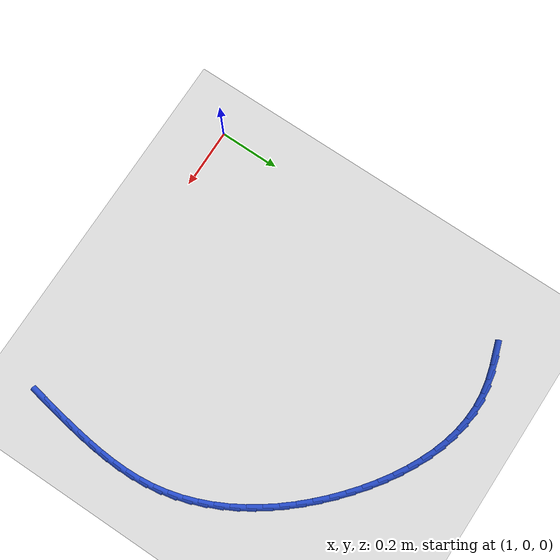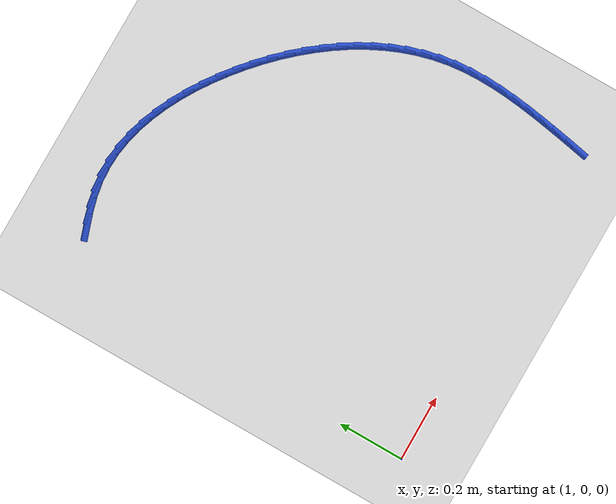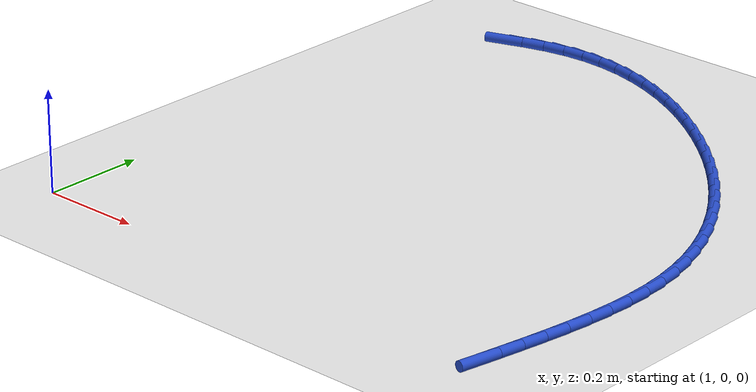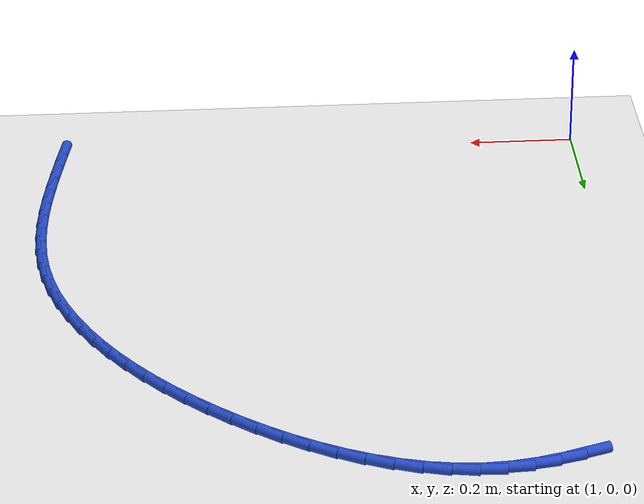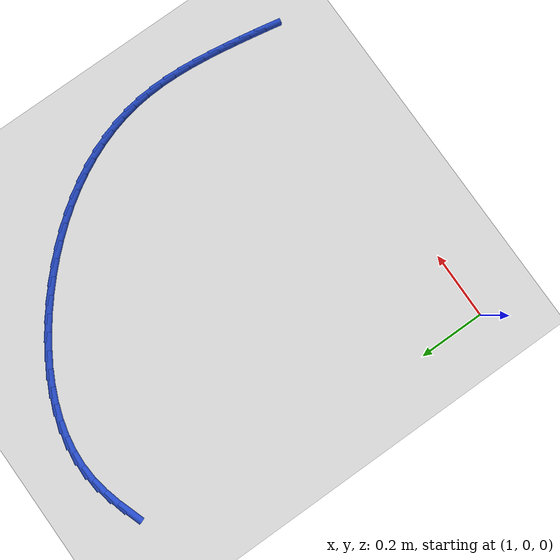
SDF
<sdf version="1.6">
 <world name="default">
  <model name="ground_plane">
   <static>1</static>
   <link name="link">
    <collision name="collision">
     <geometry><plane><normal>0 0 1</normal><size>100 100</size></plane></geometry>
     <surface><friction><ode><mu>100</mu><mu2>50</mu2></ode></friction></surface>
    </collision>
    <visual name="visual">
     <cast_shadows>0</cast_shadows>
     <geometry><plane><normal>0 0 1</normal><size>100 100</size></plane></geometry>
     <material>
      <script><uri>file://media/materials/scripts/gazebo.material</uri><name>Gazebo/WhiteGlow</name></script>
     </material>
    </visual>
   </link>
  </model>
  <model name="line">
   <link name="link_35">
    <pose>1.123345714764607 1.0975644658302217 0.01 0 1.57 0.32574064173560174</pose>
    <collision name="collision">
     <geometry><cylinder><radius>0.01</radius><length>0.08</length></cylinder></geometry>
    </collision>
    <visual name="visual">
     <material>
      <script><name>Gazebo/Blue</name><uri>file://media/materials/scripts/gazebo.material</uri></script>
     </material>
     <geometry><cylinder><radius>0.01</radius><length>0.08</length></cylinder></geometry>
    </visual>
   </link>
   <link name="link_36">
    <pose>1.1683994992366311 1.1127824038846492 0.01 0 1.57 0.254339772181018</pose>
    <collision name="collision">
     <geometry><cylinder><radius>0.01</radius><length>0.08</length></cylinder></geometry>
    </collision>
    <visual name="visual">
     <material>
      <script><name>Gazebo/Blue</name><uri>file://media/materials/scripts/gazebo.material</uri></script>
     </material>
     <geometry><cylinder><radius>0.01</radius><length>0.08</length></cylinder></geometry>
    </visual>
   </link>
   <link name="link_37">
    <pose>1.213650173322814 1.1245462126532215 0.01 0 1.57 0.16392325335727587</pose>
    <collision name="collision">
     <geometry><cylinder><radius>0.01</radius><length>0.08</length></cylinder></geometry>
    </collision>
    <visual name="visual">
     <material>
      <script><name>Gazebo/Blue</name><uri>file://media/materials/scripts/gazebo.material</uri></script>
     </material>
     <geometry><cylinder><radius>0.01</radius><length>0.08</length></cylinder></geometry>
    </visual>
   </link>
   <link name="link_38">
    <pose>1.2591621745751909 1.1320742371616423 0.01 0 1.57 0.05522889531277607</pose>
    <collision name="collision">
     <geometry><cylinder><radius>0.01</radius><length>0.08</length></cylinder></geometry>
    </collision>
    <visual name="visual">
     <material>
      <script><name>Gazebo/Blue</name><uri>file://media/materials/scripts/gazebo.material</uri></script>
     </material>
     <geometry><cylinder><radius>0.01</radius><length>0.08</length></cylinder></geometry>
    </visual>
   </link>
   <link name="link_39">
    <pose>1.3049946946627782 1.1346080934217175 0.01 0 1.57 -0.05784616686105402</pose>
    <collision name="collision">
     <geometry><cylinder><radius>0.01</radius><length>0.08</length></cylinder></geometry>
    </collision>
    <visual name="visual">
     <material>
      <script><name>Gazebo/Blue</name><uri>file://media/materials/scripts/gazebo.material</uri></script>
     </material>
     <geometry><cylinder><radius>0.01</radius><length>0.08</length></cylinder></geometry>
    </visual>
   </link>
   <link name="link_40">
    <pose>1.351083011830445 1.1319390832769252 0.01 0 1.57 -0.1615725403493236</pose>
    <collision name="collision">
     <geometry><cylinder><radius>0.01</radius><length>0.08</length></cylinder></geometry>
    </collision>
    <visual name="visual">
     <material>
      <script><name>Gazebo/Blue</name><uri>file://media/materials/scripts/gazebo.material</uri></script>
     </material>
     <geometry><cylinder><radius>0.01</radius><length>0.08</length></cylinder></geometry>
    </visual>
   </link>
   <link name="link_41">
    <pose>1.3972366533434708 1.1244163458855903 0.01 0 1.57 -0.25511027977849404</pose>
    <collision name="collision">
     <geometry><cylinder><radius>0.01</radius><length>0.08</length></cylinder></geometry>
    </collision>
    <visual name="visual">
     <material>
      <script><name>Gazebo/Blue</name><uri>file://media/materials/scripts/gazebo.material</uri></script>
     </material>
     <geometry><cylinder><radius>0.01</radius><length>0.08</length></cylinder></geometry>
    </visual>
   </link>
   <link name="link_42">
    <pose>1.4432595330480604 1.1124139217995193 0.01 0 1.57 -0.3389045160760979</pose>
    <collision name="collision">
     <geometry><cylinder><radius>0.01</radius><length>0.08</length></cylinder></geometry>
    </collision>
    <visual name="visual">
     <material>
      <script><name>Gazebo/Blue</name><uri>file://media/materials/scripts/gazebo.material</uri></script>
     </material>
     <geometry><cylinder><radius>0.01</radius><length>0.08</length></cylinder></geometry>
    </visual>
   </link>
   <link name="link_43">
    <pose>1.4889555647904191 1.096305851570519 0.01 0 1.57 -0.4138299654865193</pose>
    <collision name="collision">
     <geometry><cylinder><radius>0.01</radius><length>0.08</length></cylinder></geometry>
    </collision>
    <visual name="visual">
     <material>
      <script><name>Gazebo/Blue</name><uri>file://media/materials/scripts/gazebo.material</uri></script>
     </material>
     <geometry><cylinder><radius>0.01</radius><length>0.08</length></cylinder></geometry>
    </visual>
   </link>
   <link name="link_44">
    <pose>1.534128662416753 1.0764661757503957 0.01 0 1.57 -0.48095463164843427</pose>
    <collision name="collision">
     <geometry><cylinder><radius>0.01</radius><length>0.08</length></cylinder></geometry>
    </collision>
    <visual name="visual">
     <material>
      <script><name>Gazebo/Blue</name><uri>file://media/materials/scripts/gazebo.material</uri></script>
     </material>
     <geometry><cylinder><radius>0.01</radius><length>0.08</length></cylinder></geometry>
    </visual>
   </link>
   <link name="link_45">
    <pose>1.5785827397732668 1.0532689348909567 0.01 0 1.57 -0.5413880278359187</pose>
    <collision name="collision">
     <geometry><cylinder><radius>0.01</radius><length>0.08</length></cylinder></geometry>
    </collision>
    <visual name="visual">
     <material>
      <script><name>Gazebo/Blue</name><uri>file://media/materials/scripts/gazebo.material</uri></script>
     </material>
     <geometry><cylinder><radius>0.01</radius><length>0.08</length></cylinder></geometry>
    </visual>
   </link>
   <link name="link_46">
    <pose>1.6221217107061665 1.0270881695440075 0.01 0 1.57 -0.5961986751052533</pose>
    <collision name="collision">
     <geometry><cylinder><radius>0.01</radius><length>0.08</length></cylinder></geometry>
    </collision>
    <visual name="visual">
     <material>
      <script><name>Gazebo/Blue</name><uri>file://media/materials/scripts/gazebo.material</uri></script>
     </material>
     <geometry><cylinder><radius>0.01</radius><length>0.08</length></cylinder></geometry>
    </visual>
   </link>
   <link name="link_47">
    <pose>1.664549489061656 0.9982979202613551 0.01 0 1.57 -0.6463791659625971</pose>
    <collision name="collision">
     <geometry><cylinder><radius>0.01</radius><length>0.08</length></cylinder></geometry>
    </collision>
    <visual name="visual">
     <material>
      <script><name>Gazebo/Blue</name><uri>file://media/materials/scripts/gazebo.material</uri></script>
     </material>
     <geometry><cylinder><radius>0.01</radius><length>0.08</length></cylinder></geometry>
    </visual>
   </link>
   <link name="link_48">
    <pose>1.7056699886859419 0.967272227594806 0.01 0 1.57 -0.6928458052720089</pose>
    <collision name="collision">
     <geometry><cylinder><radius>0.01</radius><length>0.08</length></cylinder></geometry>
    </collision>
    <visual name="visual">
     <material>
      <script><name>Gazebo/Blue</name><uri>file://media/materials/scripts/gazebo.material</uri></script>
     </material>
     <geometry><cylinder><radius>0.01</radius><length>0.08</length></cylinder></geometry>
    </visual>
   </link>
   <link name="link_49">
    <pose>1.7452871660929337 0.9343847530878402 0.01 0 1.57 -0.7375283353098322</pose>
    <collision name="collision">
     <geometry><cylinder><radius>0.01</radius><length>0.08</length></cylinder></geometry>
    </collision>
    <visual name="visual">
     <material>
      <script><name>Gazebo/Blue</name><uri>file://media/materials/scripts/gazebo.material</uri></script>
     </material>
     <geometry><cylinder><radius>0.01</radius><length>0.08</length></cylinder></geometry>
    </visual>
   </link>
   <link name="link_50">
    <pose>1.7832144196179895 0.8999252885533212 0.01 0 1.57 -0.7834337093915305</pose>
    <collision name="collision">
     <geometry><cylinder><radius>0.01</radius><length>0.08</length></cylinder></geometry>
    </collision>
    <visual name="visual">
     <material>
      <script><name>Gazebo/Blue</name><uri>file://media/materials/scripts/gazebo.material</uri></script>
     </material>
     <geometry><cylinder><radius>0.01</radius><length>0.08</length></cylinder></geometry>
    </visual>
   </link>
   <link name="link_51">
    <pose>1.8192864115579155 0.8639947424696024 0.01 0 1.57 -0.8312082228976029</pose>
    <collision name="collision">
     <geometry><cylinder><radius>0.01</radius><length>0.08</length></cylinder></geometry>
    </collision>
    <visual name="visual">
     <material>
      <script><name>Gazebo/Blue</name><uri>file://media/materials/scripts/gazebo.material</uri></script>
     </material>
     <geometry><cylinder><radius>0.01</radius><length>0.08</length></cylinder></geometry>
    </visual>
   </link>
   <link name="link_52">
    <pose>1.8533407123031875 0.8266681913255103 0.01 0 1.57 -0.8811501203486982</pose>
    <collision name="collision">
     <geometry><cylinder><radius>0.01</radius><length>0.08</length></cylinder></geometry>
    </collision>
    <visual name="visual">
     <material>
      <script><name>Gazebo/Blue</name><uri>file://media/materials/scripts/gazebo.material</uri></script>
     </material>
     <geometry><cylinder><radius>0.01</radius><length>0.08</length></cylinder></geometry>
    </visual>
   </link>
   <link name="link_53">
    <pose>1.8852148922442828 0.7880207116098722 0.01 0 1.57 -0.9335549116139343</pose>
    <collision name="collision">
     <geometry><cylinder><radius>0.01</radius><length>0.08</length></cylinder></geometry>
    </collision>
    <visual name="visual">
     <material>
      <script><name>Gazebo/Blue</name><uri>file://media/materials/scripts/gazebo.material</uri></script>
     </material>
     <geometry><cylinder><radius>0.01</radius><length>0.08</length></cylinder></geometry>
    </visual>
   </link>
   <link name="link_54">
    <pose>1.9147465217716784 0.7481273798115157 0.01 0 1.57 -0.9887078555300849</pose>
    <collision name="collision">
     <geometry><cylinder><radius>0.01</radius><length>0.08</length></cylinder></geometry>
    </collision>
    <visual name="visual">
     <material>
      <script><name>Gazebo/Blue</name><uri>file://media/materials/scripts/gazebo.material</uri></script>
     </material>
     <geometry><cylinder><radius>0.01</radius><length>0.08</length></cylinder></geometry>
    </visual>
   </link>
   <link name="link_55">
    <pose>1.941773171275851 0.7070632724192671 0.01 0 1.57 -1.04687270124007</pose>
    <collision name="collision">
     <geometry><cylinder><radius>0.01</radius><length>0.08</length></cylinder></geometry>
    </collision>
    <visual name="visual">
     <material>
      <script><name>Gazebo/Blue</name><uri>file://media/materials/scripts/gazebo.material</uri></script>
     </material>
     <geometry><cylinder><radius>0.01</radius><length>0.08</length></cylinder></geometry>
    </visual>
   </link>
   <link name="link_56">
    <pose>1.9661324111472758 0.6649034659219539 0.01 0 1.57 -1.1082760466651738</pose>
    <collision name="collision">
     <geometry><cylinder><radius>0.01</radius><length>0.08</length></cylinder></geometry>
    </collision>
    <visual name="visual">
     <material>
      <script><name>Gazebo/Blue</name><uri>file://media/materials/scripts/gazebo.material</uri></script>
     </material>
     <geometry><cylinder><radius>0.01</radius><length>0.08</length></cylinder></geometry>
    </visual>
   </link>
   <link name="link_57">
    <pose>1.9876618117764304 0.6217230368084029 0.01 0 1.57 -1.173087001263785</pose>
    <collision name="collision">
     <geometry><cylinder><radius>0.01</radius><length>0.08</length></cylinder></geometry>
    </collision>
    <visual name="visual">
     <material>
      <script><name>Gazebo/Blue</name><uri>file://media/materials/scripts/gazebo.material</uri></script>
     </material>
     <geometry><cylinder><radius>0.01</radius><length>0.08</length></cylinder></geometry>
    </visual>
   </link>
   <link name="link_58">
    <pose>2.006198943553792 0.5775970615674416 0.01 0 1.57 -1.2413925232892395</pose>
    <collision name="collision">
     <geometry><cylinder><radius>0.01</radius><length>0.08</length></cylinder></geometry>
    </collision>
    <visual name="visual">
     <material>
      <script><name>Gazebo/Blue</name><uri>file://media/materials/scripts/gazebo.material</uri></script>
     </material>
     <geometry><cylinder><radius>0.01</radius><length>0.08</length></cylinder></geometry>
    </visual>
   </link>
   <link name="link_59">
    <pose>2.021581376869836 0.5326006166878965 0.01 0 1.57 -1.3131699268003998</pose>
    <collision name="collision">
     <geometry><cylinder><radius>0.01</radius><length>0.08</length></cylinder></geometry>
    </collision>
    <visual name="visual">
     <material>
      <script><name>Gazebo/Blue</name><uri>file://media/materials/scripts/gazebo.material</uri></script>
     </material>
     <geometry><cylinder><radius>0.01</radius><length>0.08</length></cylinder></geometry>
    </visual>
   </link>
   <link name="link_60">
    <pose>2.033646682115039 0.48680877865859534 0.01 0 1.57 -1.3882595885692735</pose>
    <collision name="collision">
     <geometry><cylinder><radius>0.01</radius><length>0.08</length></cylinder></geometry>
    </collision>
    <visual name="visual">
     <material>
      <script><name>Gazebo/Blue</name><uri>file://media/materials/scripts/gazebo.material</uri></script>
     </material>
     <geometry><cylinder><radius>0.01</radius><length>0.08</length></cylinder></geometry>
    </visual>
   </link>
   <link name="link_61">
    <pose>2.042232429679879 0.4402966239683646 0.01 0 1.57 -1.4645999882853815</pose>
    <collision name="collision">
     <geometry><cylinder><radius>0.01</radius><length>0.08</length></cylinder></geometry>
    </collision>
    <visual name="visual">
     <material>
      <script><name>Gazebo/Blue</name><uri>file://media/materials/scripts/gazebo.material</uri></script>
     </material>
     <geometry><cylinder><radius>0.01</radius><length>0.08</length></cylinder></geometry>
    </visual>
   </link>
   <link name="link_62">
    <pose>2.0472582891499553 0.3931485583670903 0.01 0 1.57 -1.5332784316409203</pose>
    <collision name="collision">
     <geometry><cylinder><radius>0.01</radius><length>0.08</length></cylinder></geometry>
    </collision>
    <visual name="visual">
     <material>
      <script><name>Gazebo/Blue</name><uri>file://media/materials/scripts/gazebo.material</uri></script>
     </material>
     <geometry><cylinder><radius>0.01</radius><length>0.08</length></cylinder></geometry>
    </visual>
   </link>
   <link name="link_63">
    <pose>2.049046997579802 0.34549478977891857 0.01 0 1.57 1.5499265720559114</pose>
    <collision name="collision">
     <geometry><cylinder><radius>0.01</radius><length>0.08</length></cylinder></geometry>
    </collision>
    <visual name="visual">
     <material>
      <script><name>Gazebo/Blue</name><uri>file://media/materials/scripts/gazebo.material</uri></script>
     </material>
     <geometry><cylinder><radius>0.01</radius><length>0.08</length></cylinder></geometry>
    </visual>
   </link>
   <link name="link_64">
    <pose>2.0480447859872455 0.2974795592427063 0.01 0 1.57 1.501516984656453</pose>
    <collision name="collision">
     <geometry><cylinder><radius>0.01</radius><length>0.08</length></cylinder></geometry>
    </collision>
    <visual name="visual">
     <material>
      <script><name>Gazebo/Blue</name><uri>file://media/materials/scripts/gazebo.material</uri></script>
     </material>
     <geometry><cylinder><radius>0.01</radius><length>0.08</length></cylinder></geometry>
    </visual>
   </link>
   <link name="link_65">
    <pose>2.0446979174458133 0.24924711143992687 0.01 0 1.57 1.4626347220218594</pose>
    <collision name="collision">
     <geometry><cylinder><radius>0.01</radius><length>0.08</length></cylinder></geometry>
    </collision>
    <visual name="visual">
     <material>
      <script><name>Gazebo/Blue</name><uri>file://media/materials/scripts/gazebo.material</uri></script>
     </material>
     <geometry><cylinder><radius>0.01</radius><length>0.08</length></cylinder></geometry>
    </visual>
   </link>
   <link name="link_66">
    <pose>2.0394526550290335 0.20094169105205373 0.01 0 1.57 1.432826793895521</pose>
    <collision name="collision">
     <geometry><cylinder><radius>0.01</radius><length>0.08</length></cylinder></geometry>
    </collision>
    <visual name="visual">
     <material>
      <script><name>Gazebo/Blue</name><uri>file://media/materials/scripts/gazebo.material</uri></script>
     </material>
     <geometry><cylinder><radius>0.01</radius><length>0.08</length></cylinder></geometry>
    </visual>
   </link>
   <link name="link_67">
    <pose>2.0327552618104328 0.15270754276056156 0.01 0 1.57 1.411729299558929</pose>
    <collision name="collision">
     <geometry><cylinder><radius>0.01</radius><length>0.08</length></cylinder></geometry>
    </collision>
    <visual name="visual">
     <material>
      <script><name>Gazebo/Blue</name><uri>file://media/materials/scripts/gazebo.material</uri></script>
     </material>
     <geometry><cylinder><radius>0.01</radius><length>0.08</length></cylinder></geometry>
    </visual>
   </link>
   <link name="link_68">
    <pose>2.025052000863539 0.10468891124692346 0.01 0 1.57 1.3984528297207297</pose>
    <collision name="collision">
     <geometry><cylinder><radius>0.01</radius><length>0.08</length></cylinder></geometry>
    </collision>
    <visual name="visual">
     <material>
      <script><name>Gazebo/Blue</name><uri>file://media/materials/scripts/gazebo.material</uri></script>
     </material>
     <geometry><cylinder><radius>0.01</radius><length>0.08</length></cylinder></geometry>
    </visual>
   </link>
   <link name="link_69">
    <pose>2.016752485740738 0.05700982512822193 0.01 0 1.57 1.3884985883237617</pose>
    <collision name="collision">
     <geometry><cylinder><radius>0.01</radius><length>0.08</length></cylinder></geometry>
    </collision>
    <visual name="visual">
     <material>
      <script><name>Gazebo/Blue</name><uri>file://media/materials/scripts/gazebo.material</uri></script>
     </material>
     <geometry><cylinder><radius>0.01</radius><length>0.08</length></cylinder></geometry>
    </visual>
   </link>
   <link name="link_70">
    <pose>2.008023923725216 0.009660600476475639 0.01 0 1.57 1.3801047005762934</pose>
    <collision name="collision">
     <geometry><cylinder><radius>0.01</radius><length>0.08</length></cylinder></geometry>
    </collision>
    <visual name="visual">
     <material>
      <script><name>Gazebo/Blue</name><uri>file://media/materials/scripts/gazebo.material</uri></script>
     </material>
     <geometry><cylinder><radius>0.01</radius><length>0.08</length></cylinder></geometry>
    </visual>
   </link>
  </model>
 </world>
</sdf>
